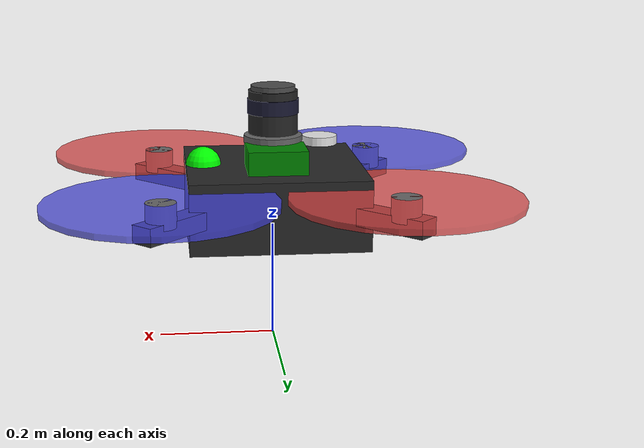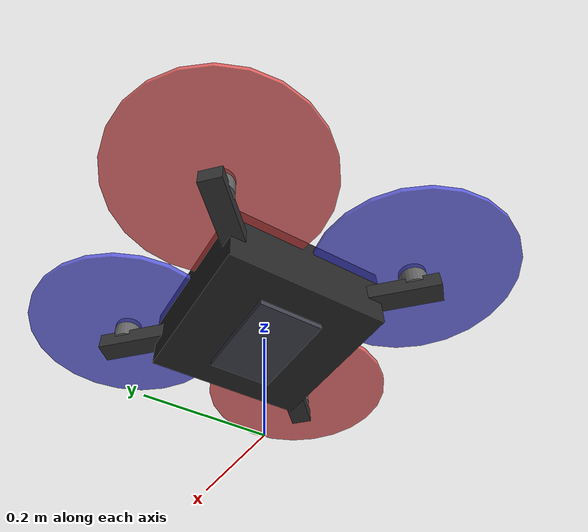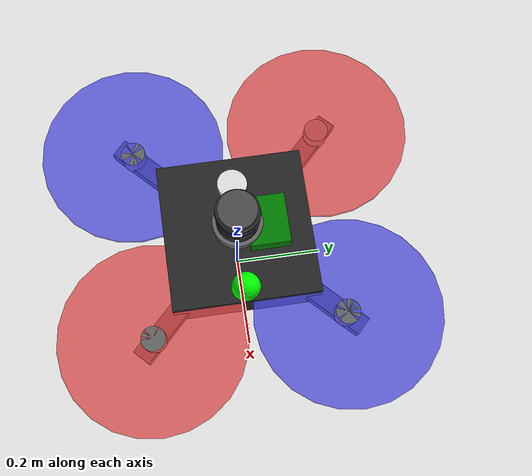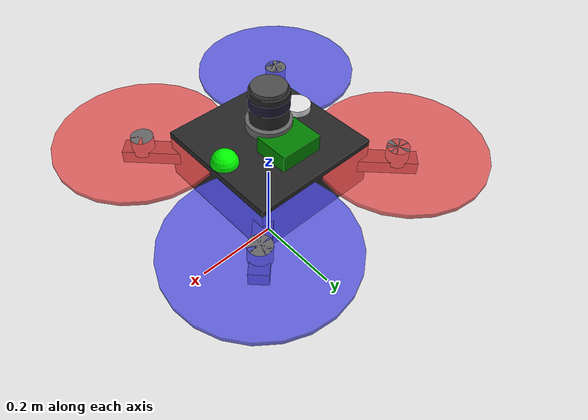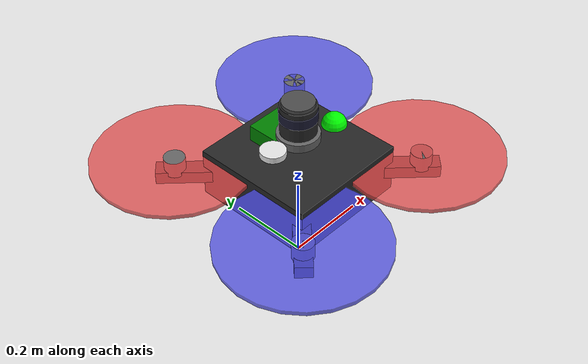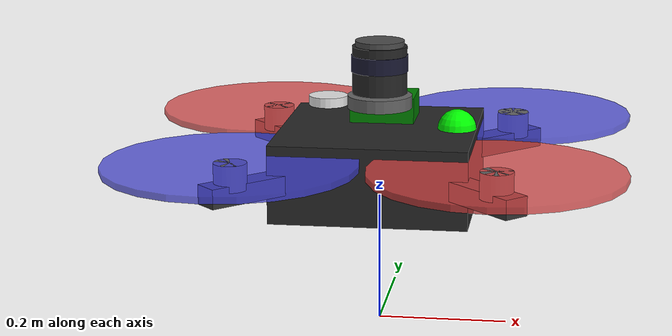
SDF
<?xml version="1.0" ?>
<sdf version="1.9">
  <model name="f11_lidar">
    <pose>0 0 0.25 0 0 0</pose>

    <!-- F-11 Base Link (Main Body) -->
    <link name="base_link">
      <inertial>
        <!-- Total mass: 4.5 kg base + 0.75 kg payload = 5.25 kg -->
        <mass>5.25</mass>
        <!-- Slight CoG shift for top-mounted LiDAR -->
        <pose>0 0 0.02 0 0 0</pose>
        <inertia>
          <ixx>0.098</ixx>
          <ixy>0</ixy>
          <ixz>0</ixz>
          <iyy>0.098</iyy>
          <iyz>0</iyz>
          <izz>0.158</izz>
        </inertia>
      </inertial>

      <!-- Main body visual - central frame -->
      <visual name="body_visual">
        <geometry>
          <box>
            <size>0.30 0.30 0.12</size>
          </box>
        </geometry>
        <material>
          <ambient>0.1 0.1 0.1 1</ambient>
          <diffuse>0.15 0.15 0.15 1</diffuse>
          <specular>0.3 0.3 0.3 1</specular>
        </material>
      </visual>

      <!-- Battery bay visual -->
      <visual name="battery_visual">
        <pose>0 0 -0.04 0 0 0</pose>
        <geometry>
          <box>
            <size>0.18 0.12 0.06</size>
          </box>
        </geometry>
        <material>
          <ambient>0.2 0.2 0.25 1</ambient>
          <diffuse>0.25 0.25 0.3 1</diffuse>
        </material>
      </visual>

      <!-- Jetson Orin NX housing visual -->
      <visual name="compute_visual">
        <pose>0 0.06 0.08 0 0 0</pose>
        <geometry>
          <box>
            <size>0.10 0.08 0.04</size>
          </box>
        </geometry>
        <material>
          <ambient>0.0 0.4 0.0 1</ambient>
          <diffuse>0.0 0.5 0.0 1</diffuse>
        </material>
      </visual>

      <!-- Front marker for orientation (green) -->
      <visual name="front_marker">
        <pose>0.12 0 0.06 0 0 0</pose>
        <geometry>
          <sphere>
            <radius>0.03</radius>
          </sphere>
        </geometry>
        <material>
          <ambient>0 1 0 1</ambient>
          <diffuse>0 1 0 1</diffuse>
        </material>
      </visual>

      <!-- Arms visual representation -->
      <visual name="arm_fr_visual">
        <pose>0.1375 -0.1375 0 0 0 -0.785398</pose>
        <geometry>
          <box>
            <size>0.25 0.04 0.03</size>
          </box>
        </geometry>
        <material>
          <ambient>0.15 0.15 0.15 1</ambient>
          <diffuse>0.2 0.2 0.2 1</diffuse>
        </material>
      </visual>

      <visual name="arm_fl_visual">
        <pose>0.1375 0.1375 0 0 0 0.785398</pose>
        <geometry>
          <box>
            <size>0.25 0.04 0.03</size>
          </box>
        </geometry>
        <material>
          <ambient>0.15 0.15 0.15 1</ambient>
          <diffuse>0.2 0.2 0.2 1</diffuse>
        </material>
      </visual>

      <visual name="arm_br_visual">
        <pose>-0.1375 -0.1375 0 0 0 0.785398</pose>
        <geometry>
          <box>
            <size>0.25 0.04 0.03</size>
          </box>
        </geometry>
        <material>
          <ambient>0.15 0.15 0.15 1</ambient>
          <diffuse>0.2 0.2 0.2 1</diffuse>
        </material>
      </visual>

      <visual name="arm_bl_visual">
        <pose>-0.1375 0.1375 0 0 0 -0.785398</pose>
        <geometry>
          <box>
            <size>0.25 0.04 0.03</size>
          </box>
        </geometry>
        <material>
          <ambient>0.15 0.15 0.15 1</ambient>
          <diffuse>0.2 0.2 0.2 1</diffuse>
        </material>
      </visual>

      <collision name="body_collision">
        <geometry>
          <box>
            <size>0.55 0.55 0.15</size>
          </box>
        </geometry>
      </collision>
    </link>

    <!-- Rotor 0 (Front Right - CW) -->
    <link name="rotor_0">
      <pose>0.195 -0.195 0.04 0 0 0</pose>
      <inertial>
        <mass>0.025</mass>
        <inertia>
          <ixx>1.0e-05</ixx>
          <ixy>0</ixy>
          <ixz>0</ixz>
          <iyy>5.0e-04</iyy>
          <iyz>0</iyz>
          <izz>5.0e-04</izz>
        </inertia>
      </inertial>
      <visual name="rotor_visual">
        <geometry>
          <cylinder>
            <radius>0.19</radius>
            <length>0.01</length>
          </cylinder>
        </geometry>
        <material>
          <ambient>0.8 0.2 0.2 0.8</ambient>
          <diffuse>0.9 0.3 0.3 0.8</diffuse>
        </material>
      </visual>
      <visual name="motor_visual">
        <pose>0 0 -0.015 0 0 0</pose>
        <geometry>
          <cylinder>
            <radius>0.025</radius>
            <length>0.04</length>
          </cylinder>
        </geometry>
        <material>
          <ambient>0.3 0.3 0.3 1</ambient>
          <diffuse>0.4 0.4 0.4 1</diffuse>
        </material>
      </visual>
    </link>

    <!-- Rotor 1 (Back Left - CW) -->
    <link name="rotor_1">
      <pose>-0.195 0.195 0.04 0 0 0</pose>
      <inertial>
        <mass>0.025</mass>
        <inertia>
          <ixx>1.0e-05</ixx>
          <ixy>0</ixy>
          <ixz>0</ixz>
          <iyy>5.0e-04</iyy>
          <iyz>0</iyz>
          <izz>5.0e-04</izz>
        </inertia>
      </inertial>
      <visual name="rotor_visual">
        <geometry>
          <cylinder>
            <radius>0.19</radius>
            <length>0.01</length>
          </cylinder>
        </geometry>
        <material>
          <ambient>0.8 0.2 0.2 0.8</ambient>
          <diffuse>0.9 0.3 0.3 0.8</diffuse>
        </material>
      </visual>
      <visual name="motor_visual">
        <pose>0 0 -0.015 0 0 0</pose>
        <geometry>
          <cylinder>
            <radius>0.025</radius>
            <length>0.04</length>
          </cylinder>
        </geometry>
        <material>
          <ambient>0.3 0.3 0.3 1</ambient>
          <diffuse>0.4 0.4 0.4 1</diffuse>
        </material>
      </visual>
    </link>

    <!-- Rotor 2 (Front Left - CCW) -->
    <link name="rotor_2">
      <pose>0.195 0.195 0.04 0 0 0</pose>
      <inertial>
        <mass>0.025</mass>
        <inertia>
          <ixx>1.0e-05</ixx>
          <ixy>0</ixy>
          <ixz>0</ixz>
          <iyy>5.0e-04</iyy>
          <iyz>0</iyz>
          <izz>5.0e-04</izz>
        </inertia>
      </inertial>
      <visual name="rotor_visual">
        <geometry>
          <cylinder>
            <radius>0.19</radius>
            <length>0.01</length>
          </cylinder>
        </geometry>
        <material>
          <ambient>0.2 0.2 0.8 0.8</ambient>
          <diffuse>0.3 0.3 0.9 0.8</diffuse>
        </material>
      </visual>
      <visual name="motor_visual">
        <pose>0 0 -0.015 0 0 0</pose>
        <geometry>
          <cylinder>
            <radius>0.025</radius>
            <length>0.04</length>
          </cylinder>
        </geometry>
        <material>
          <ambient>0.3 0.3 0.3 1</ambient>
          <diffuse>0.4 0.4 0.4 1</diffuse>
        </material>
      </visual>
    </link>

    <!-- Rotor 3 (Back Right - CCW) -->
    <link name="rotor_3">
      <pose>-0.195 -0.195 0.04 0 0 0</pose>
      <inertial>
        <mass>0.025</mass>
        <inertia>
          <ixx>1.0e-05</ixx>
          <ixy>0</ixy>
          <ixz>0</ixz>
          <iyy>5.0e-04</iyy>
          <iyz>0</iyz>
          <izz>5.0e-04</izz>
        </inertia>
      </inertial>
      <visual name="rotor_visual">
        <geometry>
          <cylinder>
            <radius>0.19</radius>
            <length>0.01</length>
          </cylinder>
        </geometry>
        <material>
          <ambient>0.2 0.2 0.8 0.8</ambient>
          <diffuse>0.3 0.3 0.9 0.8</diffuse>
        </material>
      </visual>
      <visual name="motor_visual">
        <pose>0 0 -0.015 0 0 0</pose>
        <geometry>
          <cylinder>
            <radius>0.025</radius>
            <length>0.04</length>
          </cylinder>
        </geometry>
        <material>
          <ambient>0.3 0.3 0.3 1</ambient>
          <diffuse>0.4 0.4 0.4 1</diffuse>
        </material>
      </visual>
    </link>

    <!-- LiDAR Mount Link -->
    <link name="lidar_mount_link">
      <pose>0 0 0.10 0 0 0</pose>
      <inertial>
        <mass>0.15</mass>
        <inertia>
          <ixx>0.0003</ixx>
          <ixy>0</ixy>
          <ixz>0</ixz>
          <iyy>0.0003</iyy>
          <iyz>0</iyz>
          <izz>0.0002</izz>
        </inertia>
      </inertial>
      <visual name="mount_visual">
        <geometry>
          <cylinder>
            <radius>0.05</radius>
            <length>0.02</length>
          </cylinder>
        </geometry>
        <material>
          <ambient>0.3 0.3 0.3 1</ambient>
          <diffuse>0.4 0.4 0.4 1</diffuse>
        </material>
      </visual>
    </link>

    <!-- Ouster OS1-64 LiDAR Link -->
    <link name="lidar_link">
      <pose>0 0 0.15 0 0 0</pose>
      <inertial>
        <mass>0.60</mass>
        <inertia>
          <ixx>0.0008</ixx>
          <ixy>0</ixy>
          <ixz>0</ixz>
          <iyy>0.0008</iyy>
          <iyz>0</iyz>
          <izz>0.0005</izz>
        </inertia>
      </inertial>
      <!-- LiDAR housing (Ouster OS1: ~85mm diameter, ~73mm height) -->
      <visual name="lidar_body_visual">
        <geometry>
          <cylinder>
            <radius>0.0425</radius>
            <length>0.073</length>
          </cylinder>
        </geometry>
        <material>
          <ambient>0.1 0.1 0.1 1</ambient>
          <diffuse>0.15 0.15 0.15 1</diffuse>
        </material>
      </visual>
      <!-- LiDAR window ring -->
      <visual name="lidar_window_visual">
        <pose>0 0 0.01 0 0 0</pose>
        <geometry>
          <cylinder>
            <radius>0.044</radius>
            <length>0.025</length>
          </cylinder>
        </geometry>
        <material>
          <ambient>0.05 0.05 0.1 0.9</ambient>
          <diffuse>0.1 0.1 0.2 0.9</diffuse>
        </material>
      </visual>
      <!-- LiDAR top cap -->
      <visual name="lidar_cap_visual">
        <pose>0 0 0.04 0 0 0</pose>
        <geometry>
          <cylinder>
            <radius>0.038</radius>
            <length>0.01</length>
          </cylinder>
        </geometry>
        <material>
          <ambient>0.2 0.2 0.2 1</ambient>
          <diffuse>0.3 0.3 0.3 1</diffuse>
        </material>
      </visual>

      <!-- GPU LiDAR Sensor (Ouster OS1-64 simulation) -->
      <sensor name="lidar_sensor" type="gpu_lidar">
        <pose>0 0 0.02 0 0 0</pose>
        <lidar>
          <scan>
            <horizontal>
              <samples>1024</samples>
              <resolution>1</resolution>
              <min_angle>-3.141593</min_angle>
              <max_angle>3.141593</max_angle>
            </horizontal>
            <vertical>
              <samples>64</samples>
              <resolution>1</resolution>
              <min_angle>-0.3927</min_angle>
              <max_angle>0.3927</max_angle>
            </vertical>
          </scan>
          <range>
            <min>0.3</min>
            <max>200</max>
            <resolution>0.01</resolution>
          </range>
          <noise>
            <type>gaussian</type>
            <mean>0</mean>
            <stddev>0.01</stddev>
          </noise>
        </lidar>
        <always_on>1</always_on>
        <update_rate>10</update_rate>
        <visualize>true</visualize>
      </sensor>
    </link>

    <!-- Rotor joints -->
    <joint name="rotor_0_joint" type="revolute">
      <parent>base_link</parent>
      <child>rotor_0</child>
      <axis>
        <xyz>0 0 1</xyz>
        <limit>
          <lower>-1e16</lower>
          <upper>1e16</upper>
        </limit>
        <dynamics>
          <damping>0.004</damping>
        </dynamics>
      </axis>
    </joint>

    <joint name="rotor_1_joint" type="revolute">
      <parent>base_link</parent>
      <child>rotor_1</child>
      <axis>
        <xyz>0 0 1</xyz>
        <limit>
          <lower>-1e16</lower>
          <upper>1e16</upper>
        </limit>
        <dynamics>
          <damping>0.004</damping>
        </dynamics>
      </axis>
    </joint>

    <joint name="rotor_2_joint" type="revolute">
      <parent>base_link</parent>
      <child>rotor_2</child>
      <axis>
        <xyz>0 0 1</xyz>
        <limit>
          <lower>-1e16</lower>
          <upper>1e16</upper>
        </limit>
        <dynamics>
          <damping>0.004</damping>
        </dynamics>
      </axis>
    </joint>

    <joint name="rotor_3_joint" type="revolute">
      <parent>base_link</parent>
      <child>rotor_3</child>
      <axis>
        <xyz>0 0 1</xyz>
        <limit>
          <lower>-1e16</lower>
          <upper>1e16</upper>
        </limit>
        <dynamics>
          <damping>0.004</damping>
        </dynamics>
      </axis>
    </joint>

    <!-- LiDAR mount joints -->
    <joint name="lidar_mount_joint" type="fixed">
      <parent>base_link</parent>
      <child>lidar_mount_link</child>
    </joint>

    <joint name="lidar_joint" type="fixed">
      <parent>lidar_mount_link</parent>
      <child>lidar_link</child>
    </joint>

    <!-- IMU Sensor Link -->
    <link name="imu_link">
      <pose>0 0 0 0 0 0</pose>
      <inertial>
        <mass>0.015</mass>
        <inertia>
          <ixx>1e-05</ixx>
          <ixy>0</ixy>
          <ixz>0</ixz>
          <iyy>1e-05</iyy>
          <iyz>0</iyz>
          <izz>1e-05</izz>
        </inertia>
      </inertial>
      <sensor name="imu_sensor" type="imu">
        <always_on>1</always_on>
        <update_rate>250</update_rate>
        <imu>
          <angular_velocity>
            <x><noise type="gaussian"><mean>0</mean><stddev>0.009</stddev></noise></x>
            <y><noise type="gaussian"><mean>0</mean><stddev>0.009</stddev></noise></y>
            <z><noise type="gaussian"><mean>0</mean><stddev>0.009</stddev></noise></z>
          </angular_velocity>
          <linear_acceleration>
            <x><noise type="gaussian"><mean>0</mean><stddev>0.017</stddev></noise></x>
            <y><noise type="gaussian"><mean>0</mean><stddev>0.017</stddev></noise></y>
            <z><noise type="gaussian"><mean>0</mean><stddev>0.017</stddev></noise></z>
          </linear_acceleration>
        </imu>
      </sensor>
    </link>

    <joint name="imu_joint" type="fixed">
      <parent>base_link</parent>
      <child>imu_link</child>
    </joint>

    <!-- GPS Link -->
    <link name="gps_link">
      <pose>-0.08 0 0.10 0 0 0</pose>
      <inertial>
        <mass>0.05</mass>
        <inertia>
          <ixx>1e-05</ixx>
          <ixy>0</ixy>
          <ixz>0</ixz>
          <iyy>1e-05</iyy>
          <iyz>0</iyz>
          <izz>1e-05</izz>
        </inertia>
      </inertial>
      <visual name="gps_visual">
        <geometry>
          <cylinder>
            <radius>0.03</radius>
            <length>0.015</length>
          </cylinder>
        </geometry>
        <material>
          <ambient>0.8 0.8 0.8 1</ambient>
          <diffuse>0.9 0.9 0.9 1</diffuse>
        </material>
      </visual>
      <sensor name="gps_sensor" type="navsat">
        <always_on>1</always_on>
        <update_rate>10</update_rate>
      </sensor>
    </link>

    <joint name="gps_joint" type="fixed">
      <parent>base_link</parent>
      <child>gps_link</child>
    </joint>

    <!-- ArduPilot Plugin -->
    <plugin filename="ArduPilotPlugin" name="ArduPilotPlugin">
      <fdm_addr>127.0.0.1</fdm_addr>
      <fdm_port_in>9002</fdm_port_in>
      <fdm_port_out>9003</fdm_port_out>

      <modelXYZToAirplaneXForwardZDown>0 0 0 3.141593 0 0</modelXYZToAirplaneXForwardZDown>
      <gazeboXYZToNED>0 0 0 3.141593 0 0</gazeboXYZToNED>
      <imuName>imu_link::imu_sensor</imuName>

      <!-- Motor 0: Front Right (CW) -->
      <control channel="0">
        <jointName>rotor_0_joint</jointName>
        <useForce>1</useForce>
        <multiplier>1300</multiplier>
        <offset>-0.5</offset>
        <servo_min>1000</servo_min>
        <servo_max>2000</servo_max>
        <type>VELOCITY</type>
        <p_gain>0.25</p_gain>
        <i_gain>0</i_gain>
        <d_gain>0</d_gain>
        <i_max>0</i_max>
        <i_min>0</i_min>
        <cmd_max>3.0</cmd_max>
        <cmd_min>-3.0</cmd_min>
      </control>

      <!-- Motor 1: Back Left (CW) -->
      <control channel="1">
        <jointName>rotor_1_joint</jointName>
        <useForce>1</useForce>
        <multiplier>1300</multiplier>
        <offset>-0.5</offset>
        <servo_min>1000</servo_min>
        <servo_max>2000</servo_max>
        <type>VELOCITY</type>
        <p_gain>0.25</p_gain>
        <i_gain>0</i_gain>
        <d_gain>0</d_gain>
        <i_max>0</i_max>
        <i_min>0</i_min>
        <cmd_max>3.0</cmd_max>
        <cmd_min>-3.0</cmd_min>
      </control>

      <!-- Motor 2: Front Left (CCW) -->
      <control channel="2">
        <jointName>rotor_2_joint</jointName>
        <useForce>1</useForce>
        <multiplier>1300</multiplier>
        <offset>-0.5</offset>
        <servo_min>1000</servo_min>
        <servo_max>2000</servo_max>
        <type>VELOCITY</type>
        <p_gain>0.25</p_gain>
        <i_gain>0</i_gain>
        <d_gain>0</d_gain>
        <i_max>0</i_max>
        <i_min>0</i_min>
        <cmd_max>3.0</cmd_max>
        <cmd_min>-3.0</cmd_min>
      </control>

      <!-- Motor 3: Back Right (CCW) -->
      <control channel="3">
        <jointName>rotor_3_joint</jointName>
        <useForce>1</useForce>
        <multiplier>1300</multiplier>
        <offset>-0.5</offset>
        <servo_min>1000</servo_min>
        <servo_max>2000</servo_max>
        <type>VELOCITY</type>
        <p_gain>0.25</p_gain>
        <i_gain>0</i_gain>
        <d_gain>0</d_gain>
        <i_max>0</i_max>
        <i_min>0</i_min>
        <cmd_max>3.0</cmd_max>
        <cmd_min>-3.0</cmd_min>
      </control>
    </plugin>

  </model>
</sdf>
